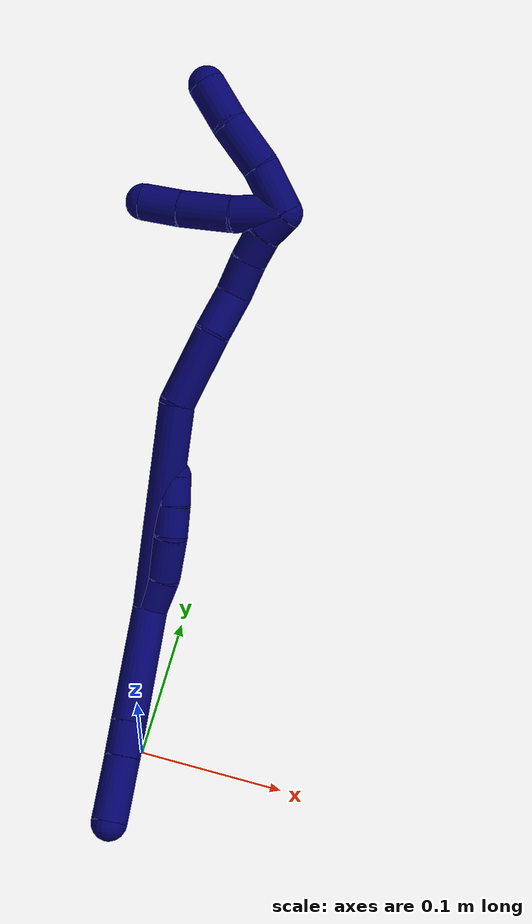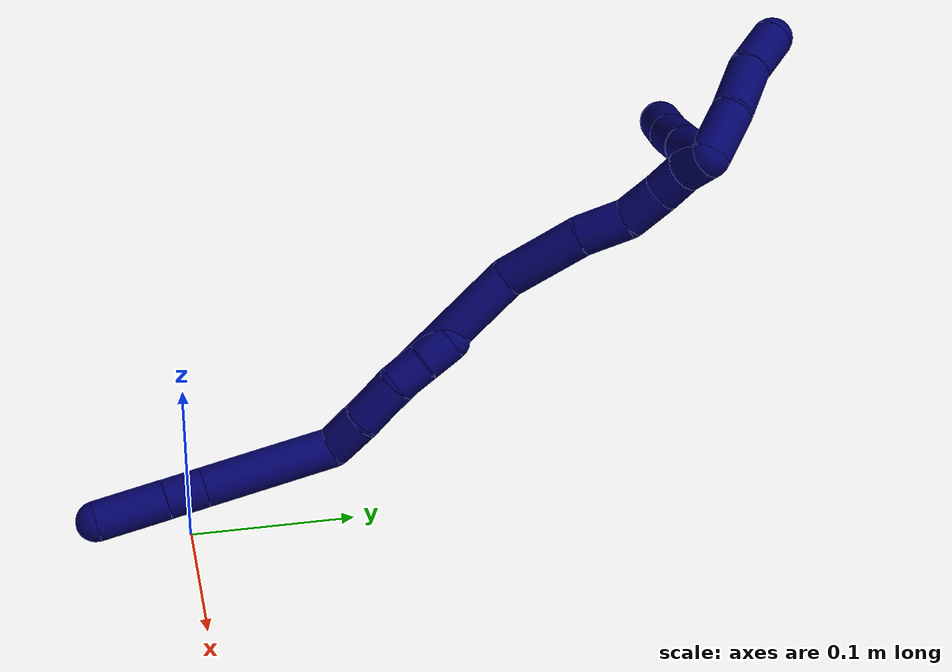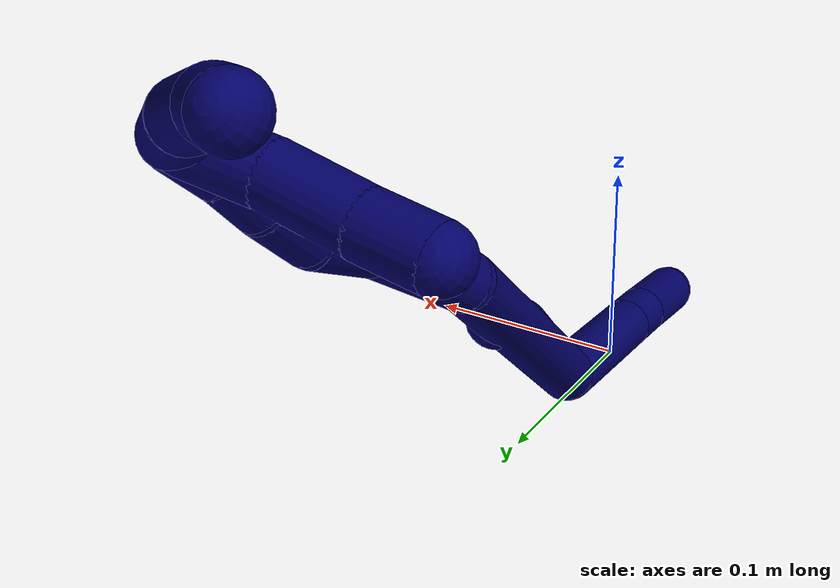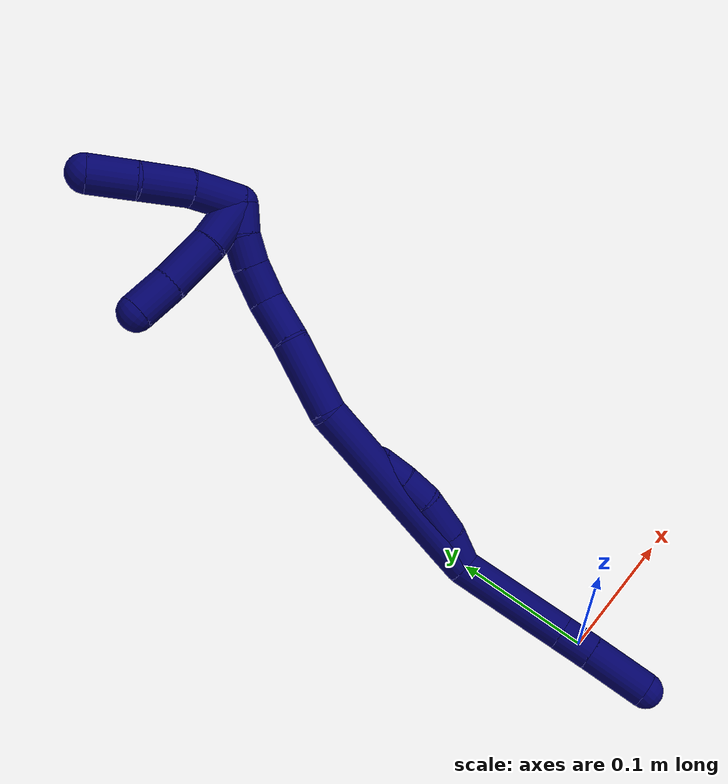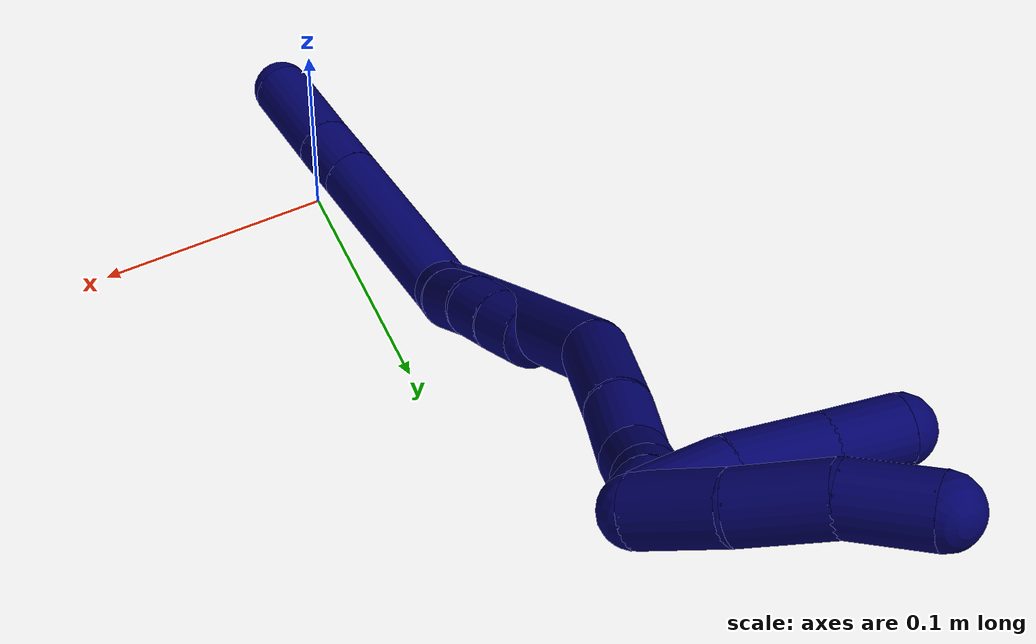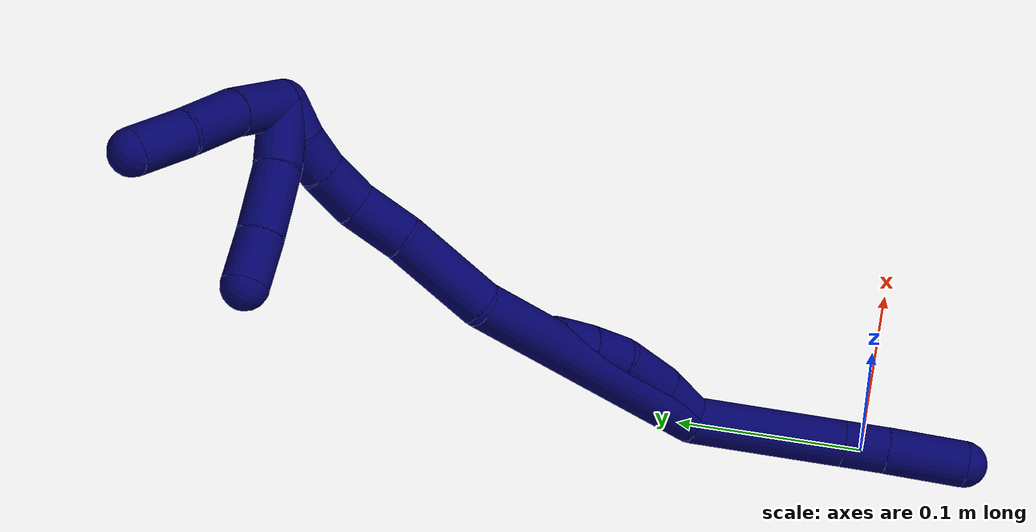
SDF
<sdf version="1.7">
 <world name="default">
  <model name="7">
   <static>0</static>
   <link name="7">
    <collision name="collision-cylinder-e_1_2_8">
     <pose>0.004551 -0.014963 -0.03791 2.76566 0.111214 0.569394</pose>
     <geometry><cylinder><radius>0.0125</radius><length>0.082018</length></cylinder></geometry>
     <surface>
      <friction><ode><mu>1.16</mu><mu2>1.16</mu2><slip1>0</slip1><slip2>0</slip2></ode></friction>
      <contact><ode><kp>1e+06</kp><kd>1</kd><max_vel>0</max_vel><min_depth>0.001</min_depth></ode></contact>
     </surface>
    </collision>
    <visual name="visual-cylinder-e_1_2_8">
     <pose>0.004551 -0.014963 -0.03791 2.76566 0.111214 0.569394</pose>
     <geometry><cylinder><radius>0.0125</radius><length>0.082018</length></cylinder></geometry>
     <material><ambient>0.003922 0 0.403922 1</ambient></material>
    </visual>
    <collision name="collision-cylinder-e_2_8_9">
     <pose>0.010437 -0.034265 -0.086942 2.76965 0.111329 0.575872</pose>
     <geometry><cylinder><radius>0.0125</radius><length>0.024026</length></cylinder></geometry>
     <surface>
      <friction><ode><mu>1.16</mu><mu2>1.16</mu2><slip1>0</slip1><slip2>0</slip2></ode></friction>
      <contact><ode><kp>1e+06</kp><kd>1</kd><max_vel>0</max_vel><min_depth>0.001</min_depth></ode></contact>
     </surface>
    </collision>
    <visual name="visual-cylinder-e_2_8_9">
     <pose>0.010437 -0.034265 -0.086942 2.76965 0.111329 0.575872</pose>
     <geometry><cylinder><radius>0.0125</radius><length>0.024026</length></cylinder></geometry>
     <material><ambient>0.003922 0 0.403922 1</ambient></material>
    </visual>
    <collision name="collision-cylinder-e_3_9_6">
     <pose>0.013824 -0.046522 -0.118463 2.77131 0.093499 0.489578</pose>
     <geometry><cylinder><radius>0.0125</radius><length>0.043956</length></cylinder></geometry>
     <surface>
      <friction><ode><mu>1.16</mu><mu2>1.16</mu2><slip1>0</slip1><slip2>0</slip2></ode></friction>
      <contact><ode><kp>1e+06</kp><kd>1</kd><max_vel>0</max_vel><min_depth>0.001</min_depth></ode></contact>
     </surface>
    </collision>
    <visual name="visual-cylinder-e_3_9_6">
     <pose>0.013824 -0.046522 -0.118463 2.77131 0.093499 0.489578</pose>
     <geometry><cylinder><radius>0.0125</radius><length>0.043956</length></cylinder></geometry>
     <material><ambient>0.003922 0 0.403922 1</ambient></material>
    </visual>
    <collision name="collision-cylinder-e_1_2_10">
     <pose>0.00393 -0.002873 0.012622 0.223846 0.294765 0.033368</pose>
     <geometry><cylinder><radius>0.0125</radius><length>0.027056</length></cylinder></geometry>
     <surface>
      <friction><ode><mu>1.16</mu><mu2>1.16</mu2><slip1>0</slip1><slip2>0</slip2></ode></friction>
      <contact><ode><kp>1e+06</kp><kd>1</kd><max_vel>0</max_vel><min_depth>0.001</min_depth></ode></contact>
     </surface>
    </collision>
    <visual name="visual-cylinder-e_1_2_10">
     <pose>0.00393 -0.002873 0.012622 0.223846 0.294765 0.033368</pose>
     <geometry><cylinder><radius>0.0125</radius><length>0.027056</length></cylinder></geometry>
     <material><ambient>0.003922 0 0.403922 1</ambient></material>
    </visual>
    <collision name="collision-cylinder-e_2_10_11">
     <pose>0.009443 -0.009384 0.040341 0.236395 0.101583 0.012073</pose>
     <geometry><cylinder><radius>0.0125</radius><length>0.031219</length></cylinder></geometry>
     <surface>
      <friction><ode><mu>1.16</mu><mu2>1.16</mu2><slip1>0</slip1><slip2>0</slip2></ode></friction>
      <contact><ode><kp>1e+06</kp><kd>1</kd><max_vel>0</max_vel><min_depth>0.001</min_depth></ode></contact>
     </surface>
    </collision>
    <visual name="visual-cylinder-e_2_10_11">
     <pose>0.009443 -0.009384 0.040341 0.236395 0.101583 0.012073</pose>
     <geometry><cylinder><radius>0.0125</radius><length>0.031219</length></cylinder></geometry>
     <material><ambient>0.003922 0 0.403922 1</ambient></material>
    </visual>
    <collision name="collision-cylinder-e_3_11_12">
     <pose>0.010432 -0.013417 0.06606 0.037263 -0.055833 -0.001041</pose>
     <geometry><cylinder><radius>0.0125</radius><length>0.021291</length></cylinder></geometry>
     <surface>
      <friction><ode><mu>1.16</mu><mu2>1.16</mu2><slip1>0</slip1><slip2>0</slip2></ode></friction>
      <contact><ode><kp>1e+06</kp><kd>1</kd><max_vel>0</max_vel><min_depth>0.001</min_depth></ode></contact>
     </surface>
    </collision>
    <visual name="visual-cylinder-e_3_11_12">
     <pose>0.010432 -0.013417 0.06606 0.037263 -0.055833 -0.001041</pose>
     <geometry><cylinder><radius>0.0125</radius><length>0.021291</length></cylinder></geometry>
     <material><ambient>0.003922 0 0.403922 1</ambient></material>
    </visual>
    <collision name="collision-cylinder-e_4_12_5">
     <pose>0.008397 -0.013891 0.086795 0.007731 -0.141486 -0.000548</pose>
     <geometry><cylinder><radius>0.0125</radius><length>0.020433</length></cylinder></geometry>
     <surface>
      <friction><ode><mu>1.16</mu><mu2>1.16</mu2><slip1>0</slip1><slip2>0</slip2></ode></friction>
      <contact><ode><kp>1e+06</kp><kd>1</kd><max_vel>0</max_vel><min_depth>0.001</min_depth></ode></contact>
     </surface>
    </collision>
    <visual name="visual-cylinder-e_4_12_5">
     <pose>0.008397 -0.013891 0.086795 0.007731 -0.141486 -0.000548</pose>
     <geometry><cylinder><radius>0.0125</radius><length>0.020433</length></cylinder></geometry>
     <material><ambient>0.003922 0 0.403922 1</ambient></material>
    </visual>
    <collision name="collision-cylinder-e_1_2_13">
     <pose>0.002688 -0.012481 0.073866 0.167391 0.035863 0.003009</pose>
     <geometry><cylinder><radius>0.0125</radius><length>0.149922</length></cylinder></geometry>
     <surface>
      <friction><ode><mu>1.16</mu><mu2>1.16</mu2><slip1>0</slip1><slip2>0</slip2></ode></friction>
      <contact><ode><kp>1e+06</kp><kd>1</kd><max_vel>0</max_vel><min_depth>0.001</min_depth></ode></contact>
     </surface>
    </collision>
    <visual name="visual-cylinder-e_1_2_13">
     <pose>0.002688 -0.012481 0.073866 0.167391 0.035863 0.003009</pose>
     <geometry><cylinder><radius>0.0125</radius><length>0.149922</length></cylinder></geometry>
     <material><ambient>0.003922 0 0.403922 1</ambient></material>
    </visual>
    <collision name="collision-cylinder-e_2_13_14">
     <pose>0.013905 -0.024816 0.173091 -0.00578 0.324448 -0.000946</pose>
     <geometry><cylinder><radius>0.0125</radius><length>0.053513</length></cylinder></geometry>
     <surface>
      <friction><ode><mu>1.16</mu><mu2>1.16</mu2><slip1>0</slip1><slip2>0</slip2></ode></friction>
      <contact><ode><kp>1e+06</kp><kd>1</kd><max_vel>0</max_vel><min_depth>0.001</min_depth></ode></contact>
     </surface>
    </collision>
    <visual name="visual-cylinder-e_2_13_14">
     <pose>0.013905 -0.024816 0.173091 -0.00578 0.324448 -0.000946</pose>
     <geometry><cylinder><radius>0.0125</radius><length>0.053513</length></cylinder></geometry>
     <material><ambient>0.003922 0 0.403922 1</ambient></material>
    </visual>
    <collision name="collision-cylinder-e_3_14_15">
     <pose>0.026933 -0.02196 0.212685 -0.188125 0.301057 -0.028616</pose>
     <geometry><cylinder><radius>0.0125</radius><length>0.030342</length></cylinder></geometry>
     <surface>
      <friction><ode><mu>1.16</mu><mu2>1.16</mu2><slip1>0</slip1><slip2>0</slip2></ode></friction>
      <contact><ode><kp>1e+06</kp><kd>1</kd><max_vel>0</max_vel><min_depth>0.001</min_depth></ode></contact>
     </surface>
    </collision>
    <visual name="visual-cylinder-e_3_14_15">
     <pose>0.026933 -0.02196 0.212685 -0.188125 0.301057 -0.028616</pose>
     <geometry><cylinder><radius>0.0125</radius><length>0.030342</length></cylinder></geometry>
     <material><ambient>0.003922 0 0.403922 1</ambient></material>
    </visual>
    <collision name="collision-cylinder-e_4_15_16">
     <pose>0.035615 -0.021255 0.238966 0.164943 0.329977 0.027524</pose>
     <geometry><cylinder><radius>0.0125</radius><length>0.025821</length></cylinder></geometry>
     <surface>
      <friction><ode><mu>1.16</mu><mu2>1.16</mu2><slip1>0</slip1><slip2>0</slip2></ode></friction>
      <contact><ode><kp>1e+06</kp><kd>1</kd><max_vel>0</max_vel><min_depth>0.001</min_depth></ode></contact>
     </surface>
    </collision>
    <visual name="visual-cylinder-e_4_15_16">
     <pose>0.035615 -0.021255 0.238966 0.164943 0.329977 0.027524</pose>
     <geometry><cylinder><radius>0.0125</radius><length>0.025821</length></cylinder></geometry>
     <material><ambient>0.003922 0 0.403922 1</ambient></material>
    </visual>
    <collision name="collision-cylinder-e_5_16_17">
     <pose>0.044176 -0.025706 0.259825 0.270734 0.4465 0.061824</pose>
     <geometry><cylinder><radius>0.0125</radius><length>0.020275</length></cylinder></geometry>
     <surface>
      <friction><ode><mu>1.16</mu><mu2>1.16</mu2><slip1>0</slip1><slip2>0</slip2></ode></friction>
      <contact><ode><kp>1e+06</kp><kd>1</kd><max_vel>0</max_vel><min_depth>0.001</min_depth></ode></contact>
     </surface>
    </collision>
    <visual name="visual-cylinder-e_5_16_17">
     <pose>0.044176 -0.025706 0.259825 0.270734 0.4465 0.061824</pose>
     <geometry><cylinder><radius>0.0125</radius><length>0.020275</length></cylinder></geometry>
     <material><ambient>0.003922 0 0.403922 1</ambient></material>
    </visual>
    <collision name="collision-cylinder-e_6_17_1">
     <pose>0.05513 -0.029505 0.276132 0.178606 0.712211 0.066587</pose>
     <geometry><cylinder><radius>0.0125</radius><length>0.020127</length></cylinder></geometry>
     <surface>
      <friction><ode><mu>1.16</mu><mu2>1.16</mu2><slip1>0</slip1><slip2>0</slip2></ode></friction>
      <contact><ode><kp>1e+06</kp><kd>1</kd><max_vel>0</max_vel><min_depth>0.001</min_depth></ode></contact>
     </surface>
    </collision>
    <visual name="visual-cylinder-e_6_17_1">
     <pose>0.05513 -0.029505 0.276132 0.178606 0.712211 0.066587</pose>
     <geometry><cylinder><radius>0.0125</radius><length>0.020127</length></cylinder></geometry>
     <material><ambient>0.003922 0 0.403922 1</ambient></material>
    </visual>
    <collision name="collision-cylinder-e_1_1_18">
     <pose>0.052444 -0.035087 0.297392 0.298061 -0.571615 -0.088183</pose>
     <geometry><cylinder><radius>0.0125</radius><length>0.034243</length></cylinder></geometry>
     <surface>
      <friction><ode><mu>1.16</mu><mu2>1.16</mu2><slip1>0</slip1><slip2>0</slip2></ode></friction>
      <contact><ode><kp>1e+06</kp><kd>1</kd><max_vel>0</max_vel><min_depth>0.001</min_depth></ode></contact>
     </surface>
    </collision>
    <visual name="visual-cylinder-e_1_1_18">
     <pose>0.052444 -0.035087 0.297392 0.298061 -0.571615 -0.088183</pose>
     <geometry><cylinder><radius>0.0125</radius><length>0.034243</length></cylinder></geometry>
     <material><ambient>0.003922 0 0.403922 1</ambient></material>
    </visual>
    <collision name="collision-cylinder-e_2_18_19">
     <pose>0.0316 -0.043352 0.323369 0.319192 -0.733091 -0.12343</pose>
     <geometry><cylinder><radius>0.0125</radius><length>0.034616</length></cylinder></geometry>
     <surface>
      <friction><ode><mu>1.16</mu><mu2>1.16</mu2><slip1>0</slip1><slip2>0</slip2></ode></friction>
      <contact><ode><kp>1e+06</kp><kd>1</kd><max_vel>0</max_vel><min_depth>0.001</min_depth></ode></contact>
     </surface>
    </collision>
    <visual name="visual-cylinder-e_2_18_19">
     <pose>0.0316 -0.043352 0.323369 0.319192 -0.733091 -0.12343</pose>
     <geometry><cylinder><radius>0.0125</radius><length>0.034616</length></cylinder></geometry>
     <material><ambient>0.003922 0 0.403922 1</ambient></material>
    </visual>
    <collision name="collision-cylinder-e_3_19_4">
     <pose>0.009956 -0.04793 0.347452 0.045661 -0.702581 -0.016737</pose>
     <geometry><cylinder><radius>0.0125</radius><length>0.031142</length></cylinder></geometry>
     <surface>
      <friction><ode><mu>1.16</mu><mu2>1.16</mu2><slip1>0</slip1><slip2>0</slip2></ode></friction>
      <contact><ode><kp>1e+06</kp><kd>1</kd><max_vel>0</max_vel><min_depth>0.001</min_depth></ode></contact>
     </surface>
    </collision>
    <visual name="visual-cylinder-e_3_19_4">
     <pose>0.009956 -0.04793 0.347452 0.045661 -0.702581 -0.016737</pose>
     <geometry><cylinder><radius>0.0125</radius><length>0.031142</length></cylinder></geometry>
     <material><ambient>0.003922 0 0.403922 1</ambient></material>
    </visual>
    <collision name="collision-cylinder-e_1_1_20">
     <pose>0.044466 -0.03247 0.281159 2.56321 -1.40143 -2.46339</pose>
     <geometry><cylinder><radius>0.0125</radius><length>0.034982</length></cylinder></geometry>
     <surface>
      <friction><ode><mu>1.16</mu><mu2>1.16</mu2><slip1>0</slip1><slip2>0</slip2></ode></friction>
      <contact><ode><kp>1e+06</kp><kd>1</kd><max_vel>0</max_vel><min_depth>0.001</min_depth></ode></contact>
     </surface>
    </collision>
    <visual name="visual-cylinder-e_1_1_20">
     <pose>0.044466 -0.03247 0.281159 2.56321 -1.40143 -2.46339</pose>
     <geometry><cylinder><radius>0.0125</radius><length>0.034982</length></cylinder></geometry>
     <material><ambient>0.003922 0 0.403922 1</ambient></material>
    </visual>
    <collision name="collision-cylinder-e_2_20_21">
     <pose>0.008775 -0.034198 0.278451 2.68873 -1.55638 -2.68238</pose>
     <geometry><cylinder><radius>0.0125</radius><length>0.036905</length></cylinder></geometry>
     <surface>
      <friction><ode><mu>1.16</mu><mu2>1.16</mu2><slip1>0</slip1><slip2>0</slip2></ode></friction>
      <contact><ode><kp>1e+06</kp><kd>1</kd><max_vel>0</max_vel><min_depth>0.001</min_depth></ode></contact>
     </surface>
    </collision>
    <visual name="visual-cylinder-e_2_20_21">
     <pose>0.008775 -0.034198 0.278451 2.68873 -1.55638 -2.68238</pose>
     <geometry><cylinder><radius>0.0125</radius><length>0.036905</length></cylinder></geometry>
     <material><ambient>0.003922 0 0.403922 1</ambient></material>
    </visual>
    <collision name="collision-cylinder-e_3_21_3">
     <pose>-0.023695 -0.035053 0.278915 0.809917 -1.49818 -0.758601</pose>
     <geometry><cylinder><radius>0.0125</radius><length>0.028113</length></cylinder></geometry>
     <surface>
      <friction><ode><mu>1.16</mu><mu2>1.16</mu2><slip1>0</slip1><slip2>0</slip2></ode></friction>
      <contact><ode><kp>1e+06</kp><kd>1</kd><max_vel>0</max_vel><min_depth>0.001</min_depth></ode></contact>
     </surface>
    </collision>
    <visual name="visual-cylinder-e_3_21_3">
     <pose>-0.023695 -0.035053 0.278915 0.809917 -1.49818 -0.758601</pose>
     <geometry><cylinder><radius>0.0125</radius><length>0.028113</length></cylinder></geometry>
     <material><ambient>0.003922 0 0.403922 1</ambient></material>
    </visual>
    <collision name="collision-sphere-3">
     <pose>-0.037715 -0.035792 0.279618 0 -0 0</pose>
     <geometry><sphere><radius>0.0125</radius></sphere></geometry>
     <surface>
      <friction><ode><mu>1.16</mu><mu2>1.16</mu2><slip1>0</slip1><slip2>0</slip2></ode></friction>
      <contact><ode><kp>1e+06</kp><kd>1</kd><max_vel>0</max_vel><min_depth>0.001</min_depth></ode></contact>
     </surface>
    </collision>
    <visual name="visual-sphere-3">
     <pose>-0.037715 -0.035792 0.279618 0 -0 0</pose>
     <geometry><sphere><radius>0.0125</radius></sphere></geometry>
     <material><ambient>0.003922 0 0.403922 1</ambient></material>
    </visual>
    <collision name="collision-sphere-21">
     <pose>-0.009676 -0.034314 0.278212 0 -0 0</pose>
     <geometry><sphere><radius>0.0125</radius></sphere></geometry>
     <surface>
      <friction><ode><mu>1.16</mu><mu2>1.16</mu2><slip1>0</slip1><slip2>0</slip2></ode></friction>
      <contact><ode><kp>1e+06</kp><kd>1</kd><max_vel>0</max_vel><min_depth>0.001</min_depth></ode></contact>
     </surface>
    </collision>
    <visual name="visual-sphere-21">
     <pose>-0.009676 -0.034314 0.278212 0 -0 0</pose>
     <geometry><sphere><radius>0.0125</radius></sphere></geometry>
     <material><ambient>0.003922 0 0.403922 1</ambient></material>
    </visual>
    <collision name="collision-sphere-20">
     <pose>0.027225 -0.034082 0.27869 0 -0 0</pose>
     <geometry><sphere><radius>0.0125</radius></sphere></geometry>
     <surface>
      <friction><ode><mu>1.16</mu><mu2>1.16</mu2><slip1>0</slip1><slip2>0</slip2></ode></friction>
      <contact><ode><kp>1e+06</kp><kd>1</kd><max_vel>0</max_vel><min_depth>0.001</min_depth></ode></contact>
     </surface>
    </collision>
    <visual name="visual-sphere-20">
     <pose>0.027225 -0.034082 0.27869 0 -0 0</pose>
     <geometry><sphere><radius>0.0125</radius></sphere></geometry>
     <material><ambient>0.003922 0 0.403922 1</ambient></material>
    </visual>
    <collision name="collision-sphere-4">
     <pose>-0.000106 -0.048472 0.359323 0 -0 0</pose>
     <geometry><sphere><radius>0.0125</radius></sphere></geometry>
     <surface>
      <friction><ode><mu>1.16</mu><mu2>1.16</mu2><slip1>0</slip1><slip2>0</slip2></ode></friction>
      <contact><ode><kp>1e+06</kp><kd>1</kd><max_vel>0</max_vel><min_depth>0.001</min_depth></ode></contact>
     </surface>
    </collision>
    <visual name="visual-sphere-4">
     <pose>-0.000106 -0.048472 0.359323 0 -0 0</pose>
     <geometry><sphere><radius>0.0125</radius></sphere></geometry>
     <material><ambient>0.003922 0 0.403922 1</ambient></material>
    </visual>
    <collision name="collision-sphere-11">
     <pose>0.011026 -0.013021 0.055438 0 -0 0</pose>
     <geometry><sphere><radius>0.0125</radius></sphere></geometry>
     <surface>
      <friction><ode><mu>1.16</mu><mu2>1.16</mu2><slip1>0</slip1><slip2>0</slip2></ode></friction>
      <contact><ode><kp>1e+06</kp><kd>1</kd><max_vel>0</max_vel><min_depth>0.001</min_depth></ode></contact>
     </surface>
    </collision>
    <visual name="visual-sphere-11">
     <pose>0.011026 -0.013021 0.055438 0 -0 0</pose>
     <geometry><sphere><radius>0.0125</radius></sphere></geometry>
     <material><ambient>0.003922 0 0.403922 1</ambient></material>
    </visual>
    <collision name="collision-sphere-10">
     <pose>0.00786 -0.005747 0.025244 0 -0 0</pose>
     <geometry><sphere><radius>0.0125</radius></sphere></geometry>
     <surface>
      <friction><ode><mu>1.16</mu><mu2>1.16</mu2><slip1>0</slip1><slip2>0</slip2></ode></friction>
      <contact><ode><kp>1e+06</kp><kd>1</kd><max_vel>0</max_vel><min_depth>0.001</min_depth></ode></contact>
     </surface>
    </collision>
    <visual name="visual-sphere-10">
     <pose>0.00786 -0.005747 0.025244 0 -0 0</pose>
     <geometry><sphere><radius>0.0125</radius></sphere></geometry>
     <material><ambient>0.003922 0 0.403922 1</ambient></material>
    </visual>
    <collision name="collision-sphere-6">
     <pose>0.015876 -0.054441 -0.138862 0 -0 0</pose>
     <geometry><sphere><radius>0.0125</radius></sphere></geometry>
     <surface>
      <friction><ode><mu>1.16</mu><mu2>1.16</mu2><slip1>0</slip1><slip2>0</slip2></ode></friction>
      <contact><ode><kp>1e+06</kp><kd>1</kd><max_vel>0</max_vel><min_depth>0.001</min_depth></ode></contact>
     </surface>
    </collision>
    <visual name="visual-sphere-6">
     <pose>0.015876 -0.054441 -0.138862 0 -0 0</pose>
     <geometry><sphere><radius>0.0125</radius></sphere></geometry>
     <material><ambient>0.003922 0 0.403922 1</ambient></material>
    </visual>
    <collision name="collision-sphere-9">
     <pose>0.011772 -0.038604 -0.098064 0 -0 0</pose>
     <geometry><sphere><radius>0.0125</radius></sphere></geometry>
     <surface>
      <friction><ode><mu>1.16</mu><mu2>1.16</mu2><slip1>0</slip1><slip2>0</slip2></ode></friction>
      <contact><ode><kp>1e+06</kp><kd>1</kd><max_vel>0</max_vel><min_depth>0.001</min_depth></ode></contact>
     </surface>
    </collision>
    <visual name="visual-sphere-9">
     <pose>0.011772 -0.038604 -0.098064 0 -0 0</pose>
     <geometry><sphere><radius>0.0125</radius></sphere></geometry>
     <material><ambient>0.003922 0 0.403922 1</ambient></material>
    </visual>
    <collision name="collision-sphere-2">
     <geometry><sphere><radius>0.0125</radius></sphere></geometry>
     <surface>
      <friction><ode><mu>1.16</mu><mu2>1.16</mu2><slip1>0</slip1><slip2>0</slip2></ode></friction>
      <contact><ode><kp>1e+06</kp><kd>1</kd><max_vel>0</max_vel><min_depth>0.001</min_depth></ode></contact>
     </surface>
    </collision>
    <visual name="visual-sphere-2">
     <geometry><sphere><radius>0.0125</radius></sphere></geometry>
     <material><ambient>0.003922 0 0.403922 1</ambient></material>
    </visual>
    <collision name="collision-sphere-19">
     <pose>0.020018 -0.047388 0.335581 0 -0 0</pose>
     <geometry><sphere><radius>0.0125</radius></sphere></geometry>
     <surface>
      <friction><ode><mu>1.16</mu><mu2>1.16</mu2><slip1>0</slip1><slip2>0</slip2></ode></friction>
      <contact><ode><kp>1e+06</kp><kd>1</kd><max_vel>0</max_vel><min_depth>0.001</min_depth></ode></contact>
     </surface>
    </collision>
    <visual name="visual-sphere-19">
     <pose>0.020018 -0.047388 0.335581 0 -0 0</pose>
     <geometry><sphere><radius>0.0125</radius></sphere></geometry>
     <material><ambient>0.003922 0 0.403922 1</ambient></material>
    </visual>
    <collision name="collision-sphere-8">
     <pose>0.009103 -0.029926 -0.075819 0 -0 0</pose>
     <geometry><sphere><radius>0.0125</radius></sphere></geometry>
     <surface>
      <friction><ode><mu>1.16</mu><mu2>1.16</mu2><slip1>0</slip1><slip2>0</slip2></ode></friction>
      <contact><ode><kp>1e+06</kp><kd>1</kd><max_vel>0</max_vel><min_depth>0.001</min_depth></ode></contact>
     </surface>
    </collision>
    <visual name="visual-sphere-8">
     <pose>0.009103 -0.029926 -0.075819 0 -0 0</pose>
     <geometry><sphere><radius>0.0125</radius></sphere></geometry>
     <material><ambient>0.003922 0 0.403922 1</ambient></material>
    </visual>
    <collision name="collision-sphere-12">
     <pose>0.009838 -0.013813 0.076681 0 -0 0</pose>
     <geometry><sphere><radius>0.0125</radius></sphere></geometry>
     <surface>
      <friction><ode><mu>1.16</mu><mu2>1.16</mu2><slip1>0</slip1><slip2>0</slip2></ode></friction>
      <contact><ode><kp>1e+06</kp><kd>1</kd><max_vel>0</max_vel><min_depth>0.001</min_depth></ode></contact>
     </surface>
    </collision>
    <visual name="visual-sphere-12">
     <pose>0.009838 -0.013813 0.076681 0 -0 0</pose>
     <geometry><sphere><radius>0.0125</radius></sphere></geometry>
     <material><ambient>0.003922 0 0.403922 1</ambient></material>
    </visual>
    <collision name="collision-sphere-5">
     <pose>0.006957 -0.013969 0.09691 0 -0 0</pose>
     <geometry><sphere><radius>0.0125</radius></sphere></geometry>
     <surface>
      <friction><ode><mu>1.16</mu><mu2>1.16</mu2><slip1>0</slip1><slip2>0</slip2></ode></friction>
      <contact><ode><kp>1e+06</kp><kd>1</kd><max_vel>0</max_vel><min_depth>0.001</min_depth></ode></contact>
     </surface>
    </collision>
    <visual name="visual-sphere-5">
     <pose>0.006957 -0.013969 0.09691 0 -0 0</pose>
     <geometry><sphere><radius>0.0125</radius></sphere></geometry>
     <material><ambient>0.003922 0 0.403922 1</ambient></material>
    </visual>
    <collision name="collision-sphere-13">
     <pose>0.005375 -0.024962 0.147731 0 -0 0</pose>
     <geometry><sphere><radius>0.0125</radius></sphere></geometry>
     <surface>
      <friction><ode><mu>1.16</mu><mu2>1.16</mu2><slip1>0</slip1><slip2>0</slip2></ode></friction>
      <contact><ode><kp>1e+06</kp><kd>1</kd><max_vel>0</max_vel><min_depth>0.001</min_depth></ode></contact>
     </surface>
    </collision>
    <visual name="visual-sphere-13">
     <pose>0.005375 -0.024962 0.147731 0 -0 0</pose>
     <geometry><sphere><radius>0.0125</radius></sphere></geometry>
     <material><ambient>0.003922 0 0.403922 1</ambient></material>
    </visual>
    <collision name="collision-sphere-14">
     <pose>0.022435 -0.024669 0.198451 0 -0 0</pose>
     <geometry><sphere><radius>0.0125</radius></sphere></geometry>
     <surface>
      <friction><ode><mu>1.16</mu><mu2>1.16</mu2><slip1>0</slip1><slip2>0</slip2></ode></friction>
      <contact><ode><kp>1e+06</kp><kd>1</kd><max_vel>0</max_vel><min_depth>0.001</min_depth></ode></contact>
     </surface>
    </collision>
    <visual name="visual-sphere-14">
     <pose>0.022435 -0.024669 0.198451 0 -0 0</pose>
     <geometry><sphere><radius>0.0125</radius></sphere></geometry>
     <material><ambient>0.003922 0 0.403922 1</ambient></material>
    </visual>
    <collision name="collision-sphere-15">
     <pose>0.031432 -0.01925 0.226918 0 -0 0</pose>
     <geometry><sphere><radius>0.0125</radius></sphere></geometry>
     <surface>
      <friction><ode><mu>1.16</mu><mu2>1.16</mu2><slip1>0</slip1><slip2>0</slip2></ode></friction>
      <contact><ode><kp>1e+06</kp><kd>1</kd><max_vel>0</max_vel><min_depth>0.001</min_depth></ode></contact>
     </surface>
    </collision>
    <visual name="visual-sphere-15">
     <pose>0.031432 -0.01925 0.226918 0 -0 0</pose>
     <geometry><sphere><radius>0.0125</radius></sphere></geometry>
     <material><ambient>0.003922 0 0.403922 1</ambient></material>
    </visual>
    <collision name="collision-sphere-16">
     <pose>0.039799 -0.023261 0.251015 0 -0 0</pose>
     <geometry><sphere><radius>0.0125</radius></sphere></geometry>
     <surface>
      <friction><ode><mu>1.16</mu><mu2>1.16</mu2><slip1>0</slip1><slip2>0</slip2></ode></friction>
      <contact><ode><kp>1e+06</kp><kd>1</kd><max_vel>0</max_vel><min_depth>0.001</min_depth></ode></contact>
     </surface>
    </collision>
    <visual name="visual-sphere-16">
     <pose>0.039799 -0.023261 0.251015 0 -0 0</pose>
     <geometry><sphere><radius>0.0125</radius></sphere></geometry>
     <material><ambient>0.003922 0 0.403922 1</ambient></material>
    </visual>
    <collision name="collision-sphere-17">
     <pose>0.048554 -0.028152 0.268636 0 -0 0</pose>
     <geometry><sphere><radius>0.0125</radius></sphere></geometry>
     <surface>
      <friction><ode><mu>1.16</mu><mu2>1.16</mu2><slip1>0</slip1><slip2>0</slip2></ode></friction>
      <contact><ode><kp>1e+06</kp><kd>1</kd><max_vel>0</max_vel><min_depth>0.001</min_depth></ode></contact>
     </surface>
    </collision>
    <visual name="visual-sphere-17">
     <pose>0.048554 -0.028152 0.268636 0 -0 0</pose>
     <geometry><sphere><radius>0.0125</radius></sphere></geometry>
     <material><ambient>0.003922 0 0.403922 1</ambient></material>
    </visual>
    <collision name="collision-sphere-1">
     <pose>0.061707 -0.030858 0.283628 0 -0 0</pose>
     <geometry><sphere><radius>0.0125</radius></sphere></geometry>
     <surface>
      <friction><ode><mu>1.16</mu><mu2>1.16</mu2><slip1>0</slip1><slip2>0</slip2></ode></friction>
      <contact><ode><kp>1e+06</kp><kd>1</kd><max_vel>0</max_vel><min_depth>0.001</min_depth></ode></contact>
     </surface>
    </collision>
    <visual name="visual-sphere-1">
     <pose>0.061707 -0.030858 0.283628 0 -0 0</pose>
     <geometry><sphere><radius>0.0125</radius></sphere></geometry>
     <material><ambient>0.003922 0 0.403922 1</ambient></material>
    </visual>
    <collision name="collision-sphere-18">
     <pose>0.043182 -0.039316 0.311157 0 -0 0</pose>
     <geometry><sphere><radius>0.0125</radius></sphere></geometry>
     <surface>
      <friction><ode><mu>1.16</mu><mu2>1.16</mu2><slip1>0</slip1><slip2>0</slip2></ode></friction>
      <contact><ode><kp>1e+06</kp><kd>1</kd><max_vel>0</max_vel><min_depth>0.001</min_depth></ode></contact>
     </surface>
    </collision>
    <visual name="visual-sphere-18">
     <pose>0.043182 -0.039316 0.311157 0 -0 0</pose>
     <geometry><sphere><radius>0.0125</radius></sphere></geometry>
     <material><ambient>0.003922 0 0.403922 1</ambient></material>
    </visual>
    <inertial>
     <pose>0.015105 -0.024191 0.131082 0 -0 0</pose>
     <mass>0.75</mass>
     <inertia>
      <ixx>0.000404</ixx>
      <ixy>0</ixy>
      <ixz>0</ixz>
      <iyy>0.000318</iyy>
      <iyz>0</iyz>
      <izz>9.5e-05</izz>
     </inertia>
    </inertial>
   </link>
   <pose>-0.020228 0.090625 0.039535 -0.985624 -0.215414 -0.055425</pose>
  </model>
 </world>
</sdf>
